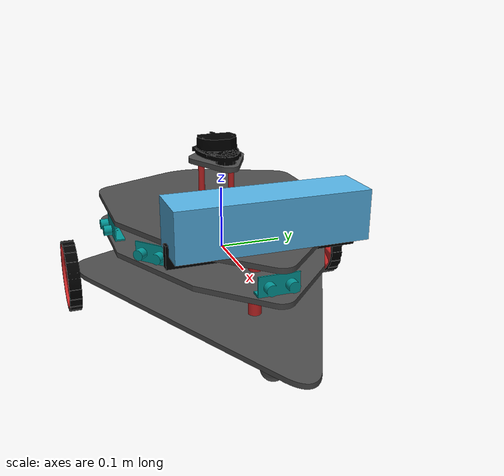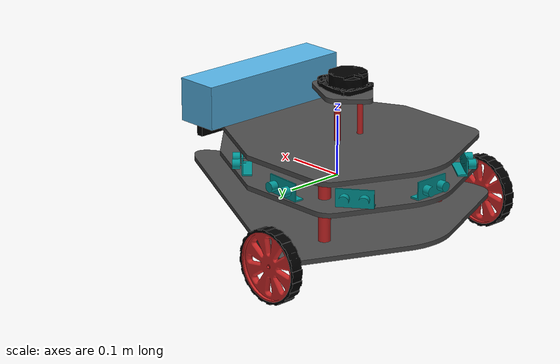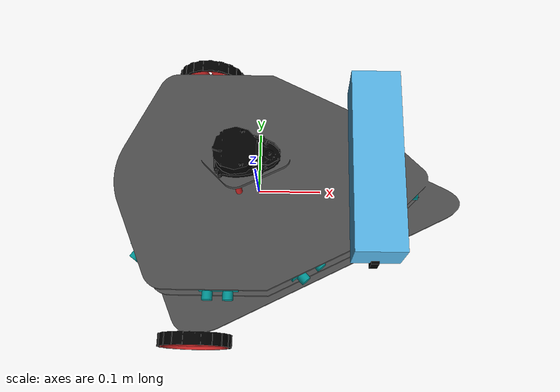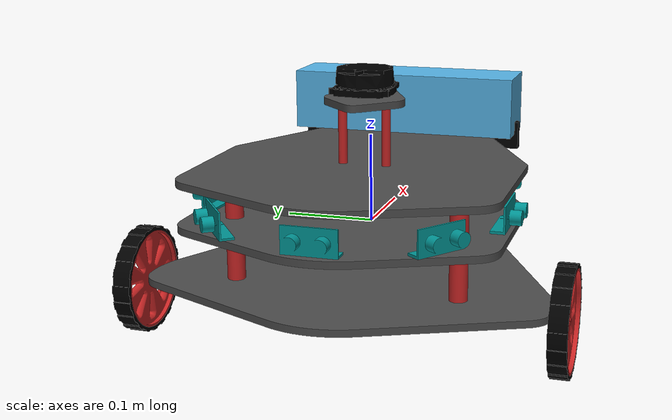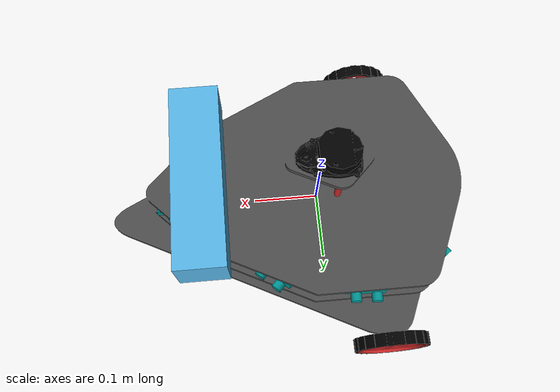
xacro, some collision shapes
<?xml version="1.0"?>

<robot name="mark" xmlns:xacro="http://ros.org/wiki/xacro">

  <xacro:property name="pi" value="3.1415926535897931" />

  <!-- Includes -->
    <xacro:include filename="$(find mark_description)/urdf/mark_base.urdf.xacro"/>
    <xacro:include filename="$(find mark_description)/urdf/mark_caster.urdf.xacro"/>
    <xacro:include filename="$(find mark_description)/urdf/mark_wheel.urdf.xacro"/>
    <xacro:include filename="$(find mark_description)/urdf/mark_sonar.urdf.xacro"/>
	<xacro:include filename="$(find mark_description)/urdf/mark_lidar.urdf.xacro"/>
    <xacro:include filename="$(find mark_description)/urdf/mark_kinect.urdf.xacro"/>
    <xacro:include filename="$(find mark_description)/urdf/mark_imu.urdf.xacro"/>
	<xacro:include filename="$(find mark_description)/urdf/materials.urdf.xacro"/>

    <!-- Differential Drive Plugin -->
	<gazebo>
		<plugin filename="libgazebo_ros_diff_drive.so" name="differential_drive_controller">
			<legacyMode>false</legacyMode>
			<alwaysOn>true</alwaysOn>
			<updateRate>100</updateRate>
			<leftJoint>left_rim_joint</leftJoint>
			<rightJoint>right_rim_joint</rightJoint>
			<wheelSeparation>0.45</wheelSeparation>
			<wheelDiameter>0.12</wheelDiameter>
			<torque>0.5</torque>
			<commandTopic>cmd_vel</commandTopic>
			<odometryTopic>odom</odometryTopic>
			<odometryFrame>odom</odometryFrame>
			<publishWheelTF>true</publishWheelTF>
			<publishWheelJointState>true</publishWheelJointState>
			<robotBaseFrame>base_link</robotBaseFrame>
			<odometrySource>world</odometrySource>
			<publishTf>1</publishTf>
			<rosDebugLevel>na</rosDebugLevel>
			<publishOdomTF>true</publishOdomTF>
			<wheelAcceleration>0</wheelAcceleration>
			<wheelTorque>5</wheelTorque>
		</plugin>
	</gazebo>
  	<!-- Base -->
  	<xacro:mark_base prefix="base"/>

  	<!-- Left Wheel -->
  	<xacro:mark_wheel prefix="left"
						joint_x="-0.099185"
						joint_y="0.23646"
						joint_z="-0.059645"
						joint_roll="0.0"
						joint_pitch="0.0"
						joint_yaw="0.0"
                        r="-1.57075"
						parent_link="base_link" />

  	<!-- Right Wheel 		-->
  	<xacro:mark_wheel prefix="right"
						joint_x="-0.099185"
						joint_y="-0.23646"
						joint_z="-0.059645"
						joint_roll="0.0"
						joint_pitch="0.0"
						joint_yaw="0.0"
                        r="1.57075"
						parent_link="base_link" />

  	<!-- IMU -->
  	<xacro:mark_imu prefix="imu"
					   joint_x="0.0"
					   joint_y="0.0"
					   joint_z="0.0"
					   joint_roll="0"
					   joint_pitch="0.0"
					   joint_yaw="0.008"
					   parent_link="base_link"
					   topic_name="imu"
					   frame_name="imu_link"
					   update_rate="10.0"
					   service_name="imu_service"
					   robot_namespace="mark" />

  	<!-- Lidar -->
  	<xacro:mark_lidar prefix="lidar"

						update_rate="40"
						samples="720"
						resolution="1"
						min_angle="-3.1416"
						max_angle="3.1416"
						min_range="0.5"
						max_range="5.0"
						range_resolution="0.1"
						parent_link="base_link"
						robot_namespace="sensor"
						topic_name="lidar"
						frame_name="lidar_link" />

  	<!-- Kinect -->
   	<xacro:mark_kinect prefix="kinect"
	   					parent_link="base_link"
						joint_x="0.178100"
						 joint_y="0.004264"
						 joint_z="0.109455"
						 joint_roll="0.0"
						 joint_pitch="0.0"
						 joint_yaw="0.0"

						 base_line="0.2"
						 update_rate="1.0"
						 camera_name="camera" />

 	<!-- Sonar Front-->
	<xacro:mark_sonar 	prefix="sonar_front"
						parent_link="base_link"

					   	joint_x="0.23874"
					   	joint_y="0.0"
					   	joint_z="0.036675"
					   	joint_roll="0.0"
					   	joint_pitch="0.0"
					   	joint_yaw="0.0"

						scan_samples="320"
						scan_resolution="1"
						min_angle="-0.479965544"
						max_angle="0.479965544"
						range_resolution="0.01"
						min_range="0.02"
						max_range="5.0"
						topic_name="sonar_front"
						frame_name="sonar_front_link"
						update_rate="4" />

	<!-- Sonar Rear-->
	<xacro:mark_sonar 	prefix="sonar_rear"
						parent_link="base_link"

					   	joint_x="-0.21"
					   	joint_y="0.0"
					   	joint_z="0.036675"
					   	joint_roll="0.0"
					   	joint_pitch="0.0"
					   	joint_yaw="3.14159"

						scan_samples="320"
						scan_resolution="1"
						min_angle="-0.479965544"
						max_angle="0.479965544"
						range_resolution="0.01"
						min_range="0.02"
						max_range="5.0"
						topic_name="sonar_rear"
						frame_name="sonar_rear_link"
						update_rate="4" />

	<!-- Sonar Front Right-->
	<xacro:mark_sonar 	prefix="sonar_front_right"
						parent_link="base_link"

					   	joint_x="0.081479"
					   	joint_y="-0.13453"
					   	joint_z="0.036675"
					   	joint_roll="0.0"
					   	joint_pitch="0.0"
					   	joint_yaw="5.44543"

						scan_samples="320"
						scan_resolution="1"
						min_angle="-0.479965544"
						max_angle="0.479965544"
						range_resolution="0.01"
						min_range="0.02"
						max_range="5.0"
						topic_name="sonar_front_right"
						frame_name="sonar_front_right_link"
						update_rate="4" />

	<!-- Sonar Front Left-->
	<xacro:mark_sonar 	prefix="sonar_front_left"
						parent_link="base_link"

					   	joint_x="0.081479"
					   	joint_y="0.13453"
					   	joint_z="0.036675"
					   	joint_roll="0.0"
					   	joint_pitch="0.0"
					   	joint_yaw="0.83374"

						scan_samples="320"
						scan_resolution="1"
						min_angle="-0.479965544"
						max_angle="0.479965544"
						range_resolution="0.01"
						min_range="0.02"
						max_range="5.0"
						topic_name="sonar_front_left"
						frame_name="sonar_front_left_link"
						update_rate="4" />

	<!-- Sonar Rear Right-->
	<xacro:mark_sonar 	prefix="sonar_rear_right"
						parent_link="base_link"

					   	joint_x="-0.164227"
					   	joint_y="-0.12321"
					   	joint_z="0.036675"
					   	joint_roll="0.0"
					   	joint_pitch="0.0"
					   	joint_yaw="4.06985"

						scan_samples="320"
						scan_resolution="1"
						min_angle="-0.479965544"
						max_angle="0.479965544"
						range_resolution="0.01"
						min_range="0.02"
						max_range="5.0"
						topic_name="sonar_rear_right"
						frame_name="sonar_rear_right_link"
						update_rate="4" />

	<!-- Sonar Rear Left-->
	<xacro:mark_sonar 	prefix="sonar_rear_left"
						parent_link="base_link"

					   	joint_x="-0.164227"
					   	joint_y="0.12321"
					   	joint_z="0.036675"
					   	joint_roll="0.0"
					   	joint_pitch="0.0"
					   	joint_yaw="2.21657"

						scan_samples="320"
						scan_resolution="1"
						min_angle="-0.479965544"
						max_angle="0.479965544"
						range_resolution="0.01"
						min_range="0.02"
						max_range="5.0"
						topic_name="sonar_rear_left"
						frame_name="sonar_rear_left_link"
						update_rate="4" />
	<!-- Sonar Right-->
	<xacro:mark_sonar 	prefix="sonar_right"
						parent_link="base_link"

					   	joint_x="-0.053914"
					   	joint_y="-0.17139"
					   	joint_z="0.036675"
					   	joint_roll="0.0"
					   	joint_pitch="0.0"
					   	joint_yaw="4.71239"

						scan_samples="320"
						scan_resolution="1"
						min_angle="-0.479965544"
						max_angle="0.479965544"
						range_resolution="0.01"
						min_range="0.02"
						max_range="5.0"
						topic_name="sonar_right"
						frame_name="sonar_right_link"
						update_rate="4" />

	<!-- Sonar Left-->
	<xacro:mark_sonar 	prefix="sonar_left"
						parent_link="base_link"

					   	joint_x="-0.053914"
					   	joint_y="0.17139"
					   	joint_z="0.036675"
					   	joint_roll="0.0"
					   	joint_pitch="0.0"
					   	joint_yaw="1.50780"

						scan_samples="320"
						scan_resolution="1"
						min_angle="-0.479965544"
						max_angle="0.479965544"
						range_resolution="0.01"
						min_range="0.02"
						max_range="5.0"
						topic_name="sonar_left"
						frame_name="sonar_left_link"
						update_rate="4" />

</robot>

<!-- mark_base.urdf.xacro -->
<robot xmlns:xacro="http://www.ros.org/wiki/xacro" name="mark_base">

	<xacro:macro name="mark_base" params="prefix">
		<link name="${prefix}_link">

			<inertial>
				<origin rpy="0 0 0" xyz="0 0 0"/>
				<mass value="9"/>
				<inertia ixx="0.000037" ixy="0.000001" ixz="0" iyy="0.000075" iyz="0" izz="0"/>
			</inertial>

			<collision>
				<origin rpy="0 0 0" xyz="0 0 0.01"/>
				<geometry>
					<mesh filename="package://mark_description/mesh/base/base.stl"/>
				</geometry>
			</collision>

			<visual>
				<origin rpy="0 0 0" xyz="0 0 0.01"/>
				<geometry>
					<mesh filename="package://mark_description/mesh/base/base.stl"/>
				</geometry>
			</visual>

			<collision name="caster_base_collision">
				<origin rpy=" 0 0 0" xyz="0.223 0 -0.09816"/>
				<geometry>
					<sphere radius="0.019"/>
				</geometry>
				<surface>
				<friction>
					<ode>
						<mu>0</mu>
						<mu2>0</mu2>
						<slip1>1.0</slip1>
						<slip2>1.0</slip2>
					</ode>
				</friction>
				</surface>
			</collision>

			<collision name="caster_wheel_collision">
				<origin rpy=" 0 0 0" xyz="0.223 0 -0.075448"/>
				<geometry>
					<cylinder length="0.04" radius="0.02"/>
				</geometry>
				<surface>
				<friction>
					<ode>
						<mu>0</mu>
						<mu2>0</mu2>
						<slip1>1.0</slip1>
						<slip2>1.0</slip2>
					</ode>
				</friction>
				</surface>
			</collision>

			<visual name="caster_base_visual">
				<origin rpy=" 0 0 0" xyz="0.223 0 -0.075448"/>
				<geometry>
					<cylinder length="0.04" radius="0.02"/>
				</geometry>
			</visual>

			<visual name="caster_wheel_visual">
				<origin rpy=" 0 0 0" xyz="0.223 0 -0.09816"/>
				<geometry>
					<sphere radius="0.019"/>
				</geometry>
			</visual>

		</link>

	 	<link name="piller_link">

			<inertial>
				<origin rpy="0 0 0" xyz="0 0 0"/>
				<mass value="0.05"/>
				<inertia ixx="0.001" ixy="0" ixz="0" iyy="0.001" iyz="0" izz="0.001"/>
			</inertial>

			<collision>
				<origin rpy="0 0 0" xyz="0 0 0"/>
				<geometry>
					<mesh filename="package://mark_description/mesh/base/pillers.dae"/>
				</geometry>
			</collision>

			<visual>
				<origin rpy="0 0 0" xyz="0 0 0"/>
				<geometry>
					<mesh filename="package://mark_description/mesh/base/pillers.dae"/>
				</geometry>
			</visual>

		</link>

			<joint name="piller_joint" type="fixed">
				<axis xyz="0 1 0"/>
				<parent link="${prefix}_link"/>
				<child link="piller_link"/>
				<origin rpy="0 0 0" xyz="-0.099185 0 -0.05621"/>
			</joint>

 		 <gazebo reference="piller_link">
			<material>Gazebo/Red</material>
		</gazebo>

		<gazebo reference="base_link">
			<material>Gazebo/DarkGrey</material>
		</gazebo>

	</xacro:macro>
</robot>

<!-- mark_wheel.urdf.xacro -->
<robot name="mark" xmlns:xacro="http://ros.org/wiki/xacro">
	<xacro:macro name="mark_wheel" params="prefix joint_x joint_y joint_z joint_roll joint_pitch joint_yaw r parent_link">

		<!-- rim link-->
		<link name="${prefix}_rim_link">

			<inertial>
				<origin rpy="0 0 0" xyz="0 0 0"/>
				<mass value="0.85"/>
				<inertia ixx="0.001" ixy="0" ixz="0" iyy="0.001" iyz="0" izz="0.001"/>
			</inertial>

			<visual>
				<origin rpy="${r} 0 0" xyz="0 0 0"/>
				<geometry>
					<mesh filename="package://mark_description/mesh/wheel/wheel_rim.dae"/>
				</geometry>
			</visual>

			<collision>
				<origin rpy="${r} 0 0" xyz="0 0 0"/>
				<geometry>
					<cylinder length="0.02" radius="0.06"/>
				</geometry>
			</collision>
		</link>

			<gazebo reference="${prefix}_rim_link">
				<material>Gazebo/Red</material>
				<mu1>1.0</mu1>
				<mu2>1.0</mu2>
				<kp>1000000.0</kp>
				<kd>100.0</kd>
				<minDepth>0.001</minDepth>
				<maxVel>1.0</maxVel>
			</gazebo>

			<joint name="${prefix}_rim_joint" type="continuous">
				<axis xyz="0 1 0"/>
				<parent link="${parent_link}"/>
				<child link="${prefix}_rim_link"/>
				<origin rpy="${joint_roll} ${joint_pitch} ${joint_yaw}" xyz="${joint_x} ${joint_y} ${joint_z}"/>
			</joint>

		<link name="${prefix}_tire_link">
			<visual>
				<origin rpy="-1.57075 0 0 " xyz="0 0 0"/>
				<geometry>
					<mesh filename="package://mark_description/mesh/wheel/wheel_tire.dae"/>
				</geometry>
				<material name="Black" />
			</visual>

			<collision>
				<origin rpy="1.57075 0 0" xyz="0 0 0"/>
				<geometry>
					<cylinder length="0.001" radius="0.001"/>
				</geometry>
			</collision>

			<inertial>
				<origin xyz="0 0 0" rpy="0 0 0"/>
				<mass value="0.001"/>
				<inertia ixx="0.001" ixy="0.0" ixz="0.0" iyy="0.001" 	iyz="0.0" izz="0.001" />
			</inertial>

		</link>

			<gazebo reference="${prefix}_tire_link">
				<material>Gazebo/Black</material>
				<mu1>1.0</mu1>
				<mu2>1.0</mu2>
				<kp>1000000.0</kp>
				<kd>100.0</kd>
				<minDepth>0.001</minDepth>
				<maxVel>1.0</maxVel>
			</gazebo>

			<joint name="${prefix}_tire_joint" type="fixed">
				<axis xyz="0 1 0"/>
				<parent link="${prefix}_rim_link"/>
				<child link="${prefix}_tire_link"/>
				<origin rpy="0 0 0" xyz="0.0 0.0 0.0"/>
			</joint>

	</xacro:macro>
</robot>

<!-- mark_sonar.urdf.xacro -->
<robot xmlns:xacro="http://ros.org/wiki/xacro">

	<xacro:macro name="mark_sonar"
	params="prefix parent_link
			joint_x joint_y joint_z joint_roll joint_pitch joint_yaw

			scan_samples scan_resolution min_angle max_angle
			range_resolution min_range max_range
			topic_name frame_name
			update_rate
			">

		<link name="${prefix}_link">
			<inertial>
				<mass value="0.001" />
				<origin xyz="0 0 0" rpy="0 0 0" />
				<inertia ixx="1e-6" ixy="0" ixz="0" iyy="1e-6" iyz="0" izz="1e-6" />
			</inertial>

			<visual>
				<origin xyz="0 0 0" rpy="0 0 0"/>
				<geometry>
					<mesh filename="package://mark_description/mesh/sensors/sensor.dae"/>
				</geometry>
				<material name="Green" />
			</visual>

			<collision>
				<origin xyz="0 0 0" rpy="0 0 0"/>
				<geometry>

					<box size="0.01 0.01 0.01" />
				</geometry>
			</collision>
		</link>

		<joint name="${prefix}_joint" type="fixed">
			<axis xyz="1 0 0" />

			<origin xyz="${joint_x} ${joint_y} ${joint_z}" rpy="${joint_roll} ${joint_pitch} ${joint_yaw}"/>
			<parent link="${parent_link}"/>
			<child link="${prefix}_link"/>
		</joint>

		<gazebo reference="${prefix}_link">
				<material>Gazebo/Green</material>

			</gazebo>

		<!--Sonar Plugin -->
		<gazebo reference="${prefix}_link">
			<sensor type="ray" name="${prefix}">
				<pose>0 0 0 0 0 0</pose>
				<ray>
					<scan>
						<horizontal>
							<samples>${scan_samples}</samples>
							<resolution>${scan_resolution}</resolution>
							<min_angle>${min_angle}</min_angle>
							<max_angle>${max_angle}</max_angle>
						</horizontal>
					</scan>

					<range>
						<min>${min_range}</min>
						<max>${max_range}</max>
						<resolution>${range_resolution}</resolution>
					</range>
				</ray>

				<plugin name="gazebo_ros_range" filename="libgazebo_ros_range.so">
					<topicName>${topic_name}</topicName>
					<frameName>${frame_name}</frameName>
					<frameId>${frame_name}</frameId>
					<radiation>ultrasound</radiation>
					<fov>0.7</fov>
					<gaussianNoise>0</gaussianNoise>
				</plugin>

				<always_on>1</always_on>
				<update_rate>${update_rate}</update_rate>
				<visualize>true</visualize>
			</sensor>
		</gazebo>

	</xacro:macro>
</robot>

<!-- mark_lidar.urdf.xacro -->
<robot xmlns:xacro="http://ros.org/wiki/xacro">
	<xacro:macro name="mark_lidar"
									params="prefix update_rate samples resolution min_angle max_angle
											min_range max_range range_resolution
											parent_link robot_namespace topic_name frame_name">

		<link name="${prefix}_link">

			<inertial>
				<mass value="0.114" />
				<origin xyz="0 0 0" rpy="0 0 0"/>
				<inertia ixx="0.01" ixy="0" ixz="0" iyy="0.01" iyz="0" izz="0.01" />
			</inertial>

			<visual>
				<origin xyz="-0.008344 0 0.15993" rpy="0 0 ${-pi/2}"/>
				<geometry>
					<mesh filename="package://mark_description/mesh/lider/lider.dae" scale="0.1 0.1 0.1"/>
				</geometry>

				<material name="Black" />
			</visual>

			<collision>
				<origin xyz="-0.01 0 0.165" rpy="0 0 ${pi}"/>
				<geometry>
					<box size="0.09 0.05 0.03"/>
				</geometry>
			</collision>
		</link>

		<joint name="${prefix}_joint" type="fixed">
			<axis xyz="0 1 0" />
			<origin xyz="0 0 0" rpy="0 0 0"/>
			<parent link="${parent_link}"/>
			<child link="${prefix}_link"/>
		</joint>

<gazebo reference="${prefix}_link">
			<material>Gazebo/Black</material>
			</gazebo>

		<gazebo reference="${prefix}_link">
			<material>Gazebo/Black</material>
			<sensor type="ray" name="head_hokuyo_sensor">
				<pose>0 0 0 0 0 0</pose>
				<visualize>false</visualize>
				<update_rate>${update_rate}</update_rate>
				<ray>
					<scan>
						<horizontal>
							<samples>${samples}</samples>
							<resolution>${resolution}</resolution>
							<min_angle>${min_angle}</min_angle>
							<max_angle>${max_angle}</max_angle>
						</horizontal>
					</scan>

					<range>
						<min>${min_range}</min>
						<max>${max_range}</max>
						<resolution>${range_resolution}</resolution>
					</range>

					<noise>
						<type>gaussian</type>
						<mean>0.0</mean>
						<stddev>0.01</stddev>
					</noise>
				</ray>

    			<plugin name="gazebo_ros_head_hokuyo_controller" filename="libgazebo_ros_laser.so">
					<topicName>${topic_name}</topicName>
					<frameName>${frame_name}</frameName>
				</plugin>
			</sensor>
		</gazebo>

	</xacro:macro>
</robot>

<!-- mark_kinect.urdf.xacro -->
<robot xmlns:xacro="http://ros.org/wiki/xacro">

	<xacro:macro name="mark_kinect"
	params="prefix parent_link
			joint_x joint_y joint_z joint_roll joint_pitch joint_yaw
			base_line update_rate
			camera_name
			">

    <link name="mount_asus_xtion_pro_link">

      <visual>
        <origin xyz="0 0 0" rpy="0 0 0"/>
        <geometry>
          <mesh filename="package://mark_description/mesh/kinite/asus_base.stl"/>
        </geometry>
        <material name="Black"/>
      </visual>

      <collision>
        <origin xyz="0.0 0.0 0.0" rpy="0 0 0" />
        <geometry>
          <box size="0.2760 0.0330 0.0120"/>
        </geometry>
      </collision>

      <inertial>
        <mass value="0.170" />
        <origin xyz="0 0 0" />
        <inertia ixx="0.001152600" ixy="0.0" ixz="0.0"
                 iyy="0.000148934" iyz="0.0"
                 izz="0.001154654" />
      </inertial>

    </link>

    <!-- Asus mount -->
    <joint name="mount_asus_xtion_pro_joint" type="fixed">
			<origin xyz="0.17637 0 0.071802" rpy="1.57080 0 1.57080"/>
      <parent link="base_link"/>
      <child link="mount_asus_xtion_pro_link"/>
    </joint>

    <link name="camera_link">

      <visual>
        <origin xyz="0.0 0.0 0.004" rpy="0 0 0"/>
        <geometry>
          <mesh filename="package://mark_description/mesh/kinite/xtion_pro_camera.dae"/>
        </geometry>
      </visual>

      <collision>
        <origin xyz="0.0 0.0 0.0" rpy="0 0 0" />
        <geometry>
          <box size="0.0730 0.2760 0.0720"/>
        </geometry>
      </collision>

      <inertial>
        <mass value="0.170" />
        <origin xyz="0 0 0" />
        <inertia ixx="0.001152600" ixy="0.0" ixz="0.0"
                 iyy="0.000148934" iyz="0.0"
                 izz="0.001154654" />
      </inertial>

    </link>

    <link name="camera_rgb_frame"/>

    <joint name="camera_rgb_optical_joint" type="fixed">
      <origin xyz="0 0 0" rpy="${-pi/2} 0 ${-pi/2}" />
      <parent link="camera_rgb_frame" />
      <child link="camera_rgb_optical_frame" />
    </joint>

    <link name="camera_rgb_optical_frame"/>

    <joint name="camera_joint" type="fixed">
			<origin xyz="${joint_x} ${joint_y} ${joint_z}" rpy="${joint_roll} ${joint_pitch} ${joint_yaw}"/>
      <parent link="${parent_link}"/>
      <child link="camera_link"/>
    </joint>
    <joint name="camera_rgb_joint" type="fixed">
			<origin xyz="0.0 -0.02 0.0" rpy="0.0 0.0 0.0"/>
			<parent link="camera_link"/>
      <child link="camera_rgb_frame" />
    </joint>

    <joint name="camera_depth_joint" type="fixed">
      <origin xyz="0 -0.045 0" rpy="0 0 0" />
      <parent link="camera_link" />
      <child link="camera_depth_frame" />
    </joint>

    <link name="camera_depth_frame"/>

    <joint name="camera_depth_optical_joint" type="fixed">
      <origin xyz="0 0 0" rpy="${-pi/2} 0 ${-pi/2}" />
      <parent link="camera_depth_frame" />
      <child link="camera_depth_optical_frame" />
    </joint>

    <link name="camera_depth_optical_frame"/>

		<gazebo reference="mount_asus_xtion_pro_link">
			<material>Gazebo/Black</material>
		</gazebo>

		<gazebo reference="camera_link">
      <sensor type="depth" name="camera">
        <always_on>true</always_on>
        <update_rate>20.0</update_rate>
        <camera>
          <horizontal_fov>${60.0*pi/180.0}</horizontal_fov>
          <image>
            <format>R8G8B8</format>
            <width>640</width>
            <height>480</height>
          </image>
          <clip>
            <near>0.05</near>
            <far>8.0</far>
          </clip>
        </camera>

        <plugin name="kinect_camera_controller" filename="libgazebo_ros_openni_kinect.so">
          <cameraName>camera</cameraName>
          <alwaysOn>true</alwaysOn>
          <updateRate>10</updateRate>
          <imageTopicName>rgb/image_raw</imageTopicName>
          <depthImageTopicName>depth/image_raw</depthImageTopicName>
          <pointCloudTopicName>depth/points</pointCloudTopicName>
          <cameraInfoTopicName>rgb/camera_info</cameraInfoTopicName>
          <depthImageCameraInfoTopicName>depth/camera_info</depthImageCameraInfoTopicName>
          <frameName>camera_depth_optical_frame</frameName>
          <baseline>0.1</baseline>
					<pointCloudCutoff>0.4</pointCloudCutoff>
					<distortionK1>0.00000001</distortionK1>
					<distortionK2>0.00000001</distortionK2>
					<distortionK3>0.00000001</distortionK3>
					<distortionT1>0.00000001</distortionT1>
					<distortionT2>0.00000001</distortionT2>
					<CxPrime>0</CxPrime>
					<Cx>0</Cx>
					<Cy>0</Cy>
					<focalLength>0</focalLength>
					<hackBaseline>0</hackBaseline>
        </plugin>

      </sensor>

    </gazebo>

	</xacro:macro>

</robot>

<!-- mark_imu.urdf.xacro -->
<robot xmlns:xacro="http://ros.org/wiki/xacro">

	<xacro:macro name="mark_imu" params="prefix joint_x joint_y joint_z joint_roll joint_pitch joint_yaw parent_link topic_name frame_name update_rate service_name robot_namespace">

		<link name="${prefix}_link"/>

		<joint name="${prefix}_joint" type="fixed">
			<axis xyz="1 0 0"/>
			<origin xyz="${joint_x} ${joint_y} ${joint_z}" rpy="${joint_roll} ${joint_pitch} ${joint_yaw}" />
			<parent link="${parent_link}"/>
			<child link="${prefix}_link"/>
		</joint>

		<gazebo>
			<plugin name="${prefix}_plugin" filename="libgazebo_ros_imu.so">
				<alwaysOn>true</alwaysOn>
				<robotNamespace>gazebo</robotNamespace>
				<frameName>${frame_name}</frameName>
				<bodyName>${prefix}_link</bodyName>
				<topicName>${topic_name}</topicName>
				<serviceName>${service_name}</serviceName>
				<gaussianNoise>0.0</gaussianNoise>
				<updateRate>${update_rate}</updateRate>
			</plugin>
		</gazebo>

	</xacro:macro>

</robot>

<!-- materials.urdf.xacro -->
<robot name="mark" xmlns:xacro="http://www.ros.org/wiki/xacro">
	<!-- Materials -->
  <material name="Black">
    <color rgba="0 0 0 1.0"/>
  </material>

  <material name="Orange">
    <color rgba="${255/255} ${108/255} ${10/255} 1.0"/>
  </material>

  <material name="Yellow">
    <color rgba="${255/255} ${255/255} ${0/255} 1.0"/>
  </material>

  <material name="Red">
    <color rgba="${255/255} ${0/255} ${0/255} 1.0"/>
  </material>

  <material name="DarkGrey">
    <color rgba="${46/255} ${49/255} ${49/255} 1.0"/>
  </material>

  <material name="Green">
    <color rgba="${0/255} ${150/255} ${150/255} 1.0"/>
  </material>

  <material name="white">
    <color rgba="${0/255} ${250/255} ${220/255} 1.0"/>
  </material>
</robot>
